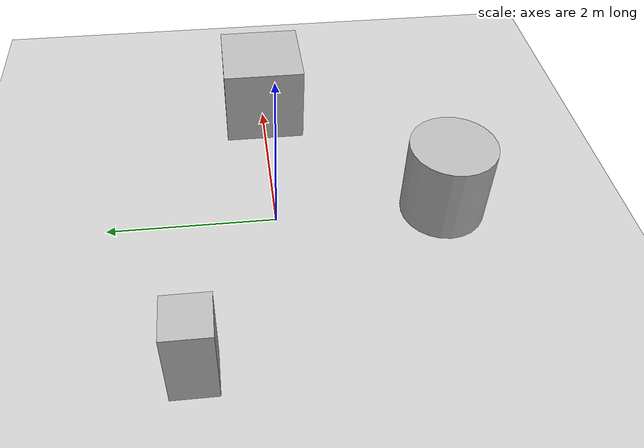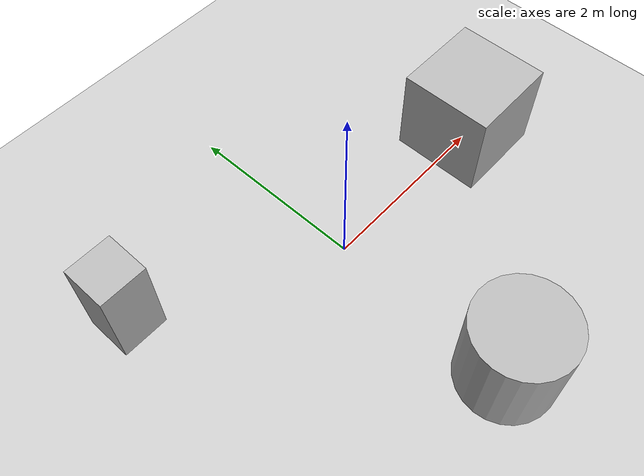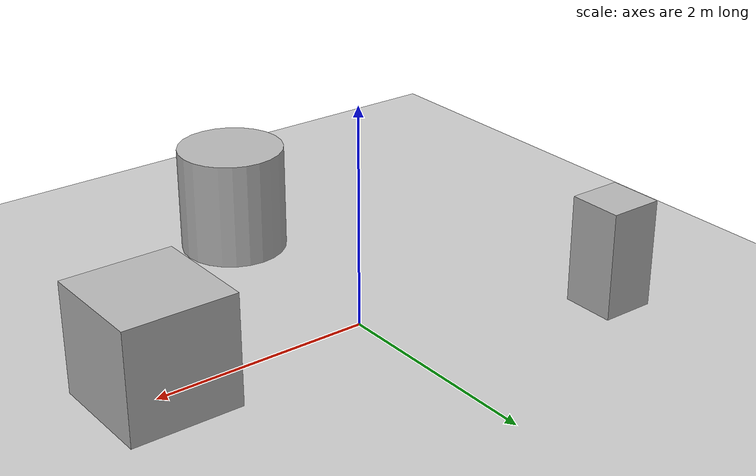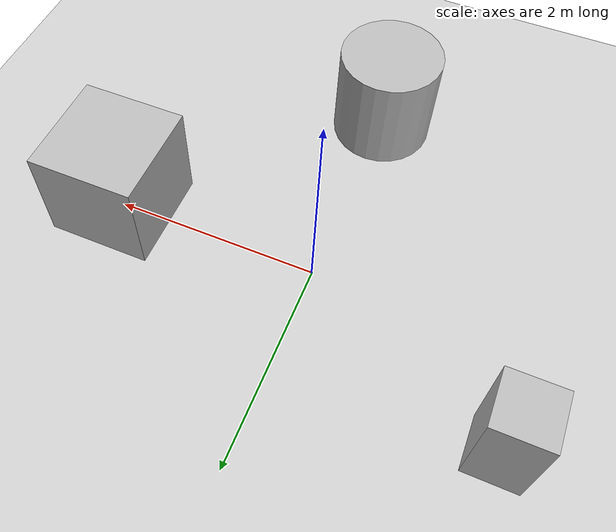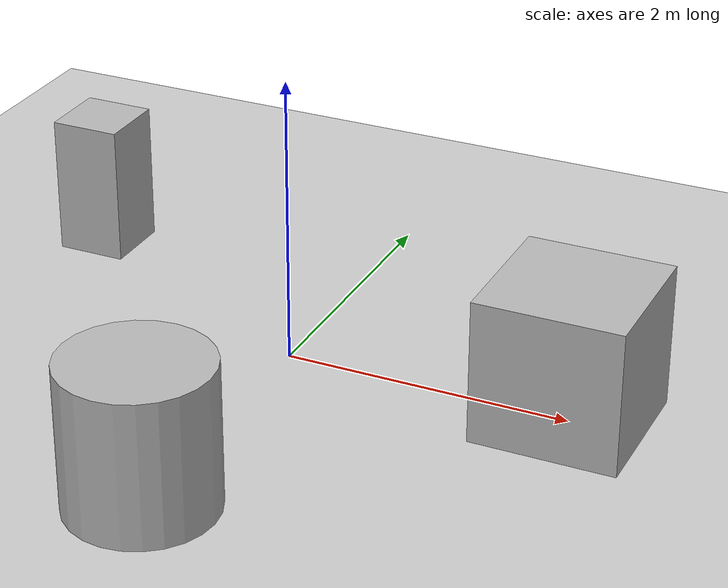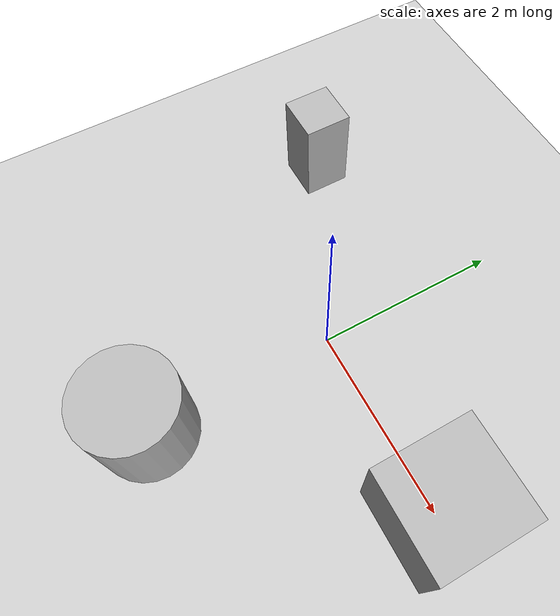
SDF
<?xml version="1.0" ?>
<sdf version="1.7">
  <world name="lidar_world">

    <!-- Physics -->
    <physics type="ode">
      <real_time_update_rate>1000</real_time_update_rate>
    </physics>

    <!-- Ground -->
    <model name="ground_plane">
      <static>true</static>
      <link name="link">
        <collision name="collision">
          <geometry>
            <plane>
              <normal>0 0 1</normal>
              <size>20 20</size>
            </plane>
          </geometry>
        </collision>
        <visual name="visual">
          <geometry>
            <plane>
              <size>20 20</size>
            </plane>
          </geometry>
        </visual>
      </link>
    </model>

    <!-- LIDAR -->
    <model name="ground_lidar">
      <static>true</static>
      <pose>0 0 0.1 0 0 0</pose>

      <link name="lidar_link">
        <sensor name="lidar_sensor" type="gpu_lidar">
          <pose>0 0 0 0 0 0</pose>
          <topic>/lidar</topic>
          <update_rate>10</update_rate>

          <lidar>
            <scan>
              <horizontal>
                <samples>720</samples>
                <resolution>1</resolution>
                <min_angle>-3.14</min_angle>
                <max_angle>3.14</max_angle>
              </horizontal>
            </scan>
            <range>
              <min>0.1</min>
              <max>10.0</max>
              <resolution>0.01</resolution>
            </range>
          </lidar>

          <always_on>true</always_on>
          <visualize>true</visualize>
        </sensor>
      </link>
    </model>

    <!-- Box obstacle -->
    <model name="box1">
      <static>true</static>
      <pose>2 0 0.5 0 0 0</pose>
      <link name="link">
        <collision name="collision">
          <geometry>
            <box><size>1 1 1</size></box>
          </geometry>
        </collision>
        <visual name="visual">
          <geometry>
            <box><size>1 1 1</size></box>
          </geometry>
        </visual>
      </link>
    </model>

    <!-- Another box -->
    <model name="box2">
      <static>true</static>
      <pose>-2 1 0.5 0 0 0</pose>
      <link name="link">
        <collision name="collision">
          <geometry>
            <box><size>0.5 0.5 1</size></box>
          </geometry>
        </collision>
        <visual name="visual">
          <geometry>
            <box><size>0.5 0.5 1</size></box>
          </geometry>
        </visual>
      </link>
    </model>

    <!-- Cylinder obstacle -->
    <model name="cylinder">
      <static>true</static>
      <pose>0 -2 0.5 0 0 0</pose>
      <link name="link">
        <collision name="collision">
          <geometry>
            <cylinder>
              <radius>0.5</radius>
              <length>1</length>
            </cylinder>
          </geometry>
        </collision>
        <visual name="visual">
          <geometry>
            <cylinder>
              <radius>0.5</radius>
              <length>1</length>
            </cylinder>
          </geometry>
        </visual>
      </link>
    </model>

  </world>
</sdf>
